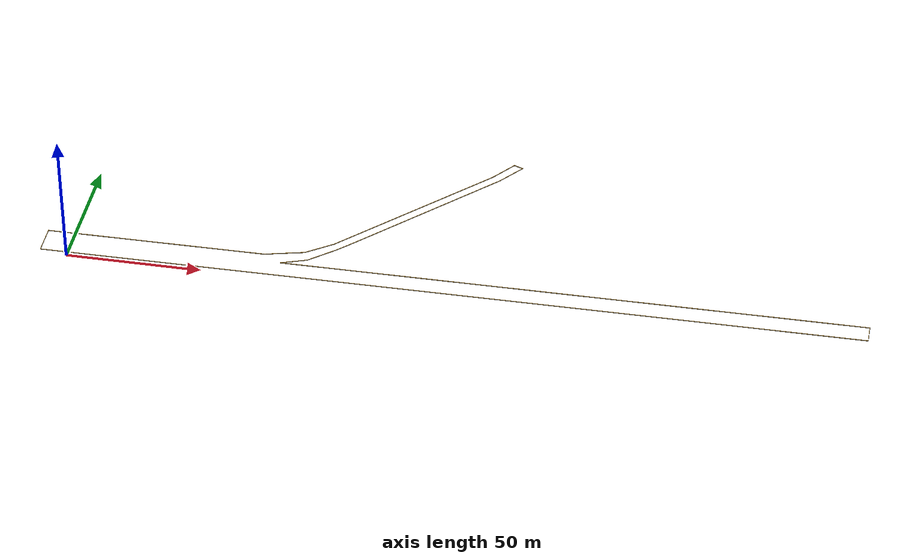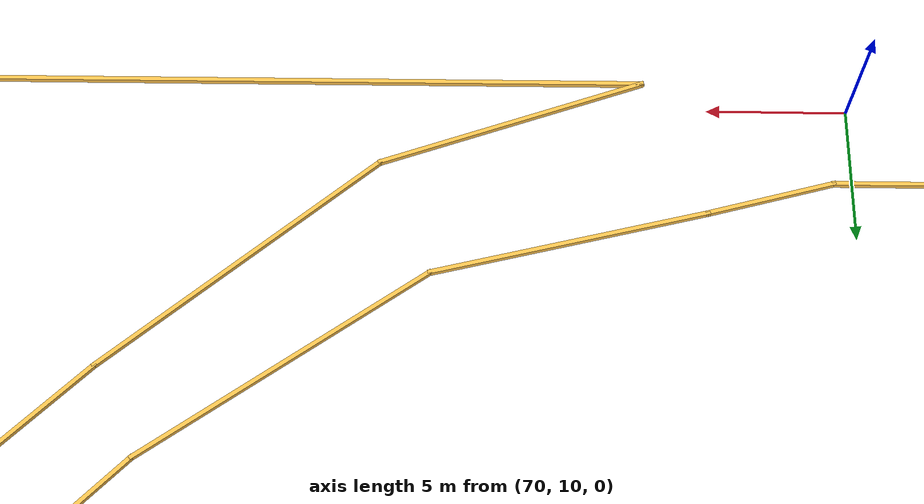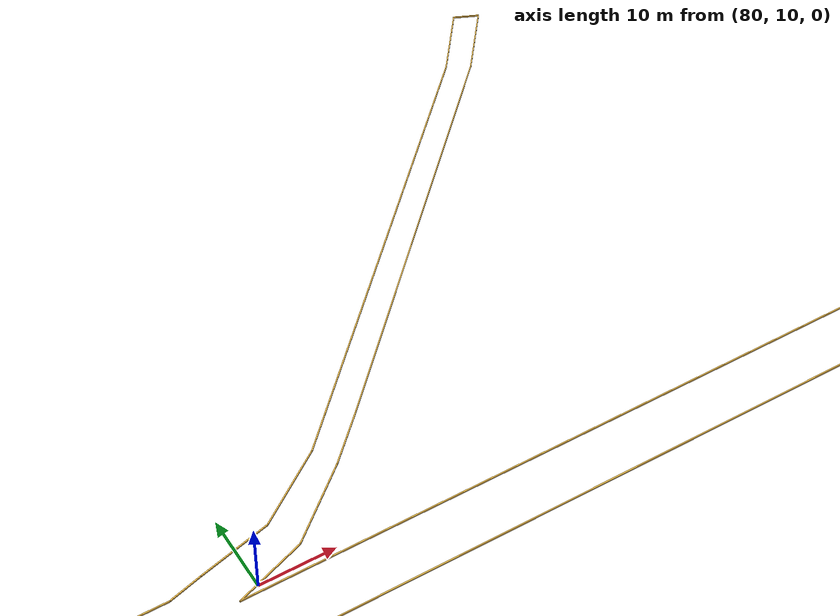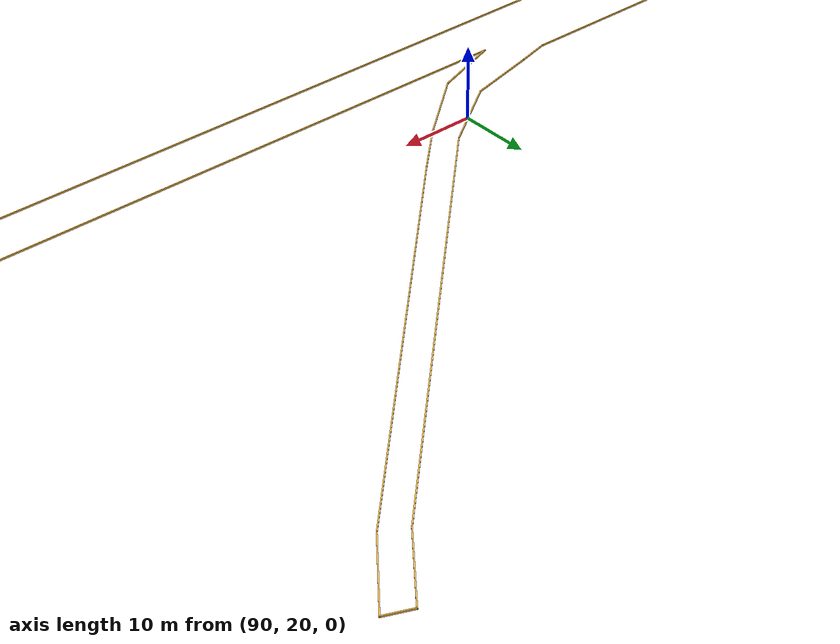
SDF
<sdf version="1.7">
 <world name="default">
  <light name="sun" type="directional">
   <pose>0 0 10 0 -0 0</pose>
   <diffuse>0.8 0.8 0.8 1</diffuse>
   <specular>0.2 0.2 0.2 1</specular>
   <attenuation>
    <range>1000</range>
    <constant>0.9</constant>
    <linear>0.01</linear>
    <quadratic>0.001</quadratic>
   </attenuation>
   <direction>-0.5 0.1 -0.9</direction>
   <spot><inner_angle>0</inner_angle><outer_angle>0</outer_angle><falloff>0</falloff></spot>
  </light>
  <gravity>0 0 -9.8</gravity>
  <magnetic_field>6e-06 2.3e-05 -4.2e-05</magnetic_field>
  <atmosphere type="adiabatic"/>
  <physics type="ode">
   <max_step_size>0.001</max_step_size>
   <real_time_factor>1</real_time_factor>
   <real_time_update_rate>1000</real_time_update_rate>
  </physics>
  <scene><ambient>0.4 0.4 0.4 1</ambient><background>0.7 0.7 0.7 1</background><shadows>1</shadows></scene>
  <spherical_coordinates>
   <surface_model>EARTH_WGS84</surface_model>
   <latitude_deg>0</latitude_deg>
   <longitude_deg>0</longitude_deg>
   <elevation>0</elevation>
   <heading_deg>0</heading_deg>
  </spherical_coordinates>
  <model name="Highway_bars">
   <pose>139.869 40.6807 0.195642 0 -0 0</pose>
   <link name="Wall_11">
    <collision name="Wall_11_Collision">
     <geometry><box><size>81 0.15 0.2</size></box></geometry>
     <pose>0 0 0.1 0 -0 0</pose>
    </collision>
    <visual name="Wall_11_Visual">
     <pose>0 0 0.1 0 -0 0</pose>
     <geometry><box><size>81 0.15 0.2</size></box></geometry>
     <material>
      <script><uri>file://media/materials/scripts/gazebo.material</uri><name>Gazebo/Grey</name></script>
      <ambient>1 0.764706 0.305882 1</ambient>
     </material>
     <meta><layer>0</layer></meta>
    </visual>
    <pose>-109.575 -27.6751 0 0 -0 0</pose>
   </link>
   <link name="Wall_13">
    <collision name="Wall_13_Collision">
     <geometry><box><size>4.75 0.15 0.2</size></box></geometry>
     <pose>0 0 0.1 0 -0 0</pose>
    </collision>
    <visual name="Wall_13_Visual">
     <pose>0 0 0.1 0 -0 0</pose>
     <geometry><box><size>4.75 0.15 0.2</size></box></geometry>
     <material>
      <script><uri>file://media/materials/scripts/gazebo.material</uri><name>Gazebo/Grey</name></script>
      <ambient>1 0.764706 0.305882 1</ambient>
     </material>
     <meta><layer>0</layer></meta>
    </visual>
    <pose>-66.9285 -27.0796 0 0 -0 0.261905</pose>
   </link>
   <link name="Wall_15">
    <collision name="Wall_15_Collision">
     <geometry><box><size>10.039 0.15 0.2</size></box></geometry>
     <pose>0 0 0.1 0 -0 0</pose>
    </collision>
    <visual name="Wall_15_Visual">
     <pose>0 0 0.1 0 -0 0</pose>
     <geometry><box><size>10.039 0.15 0.2</size></box></geometry>
     <material>
      <script><uri>file://media/materials/scripts/gazebo.material</uri><name>Gazebo/Grey</name></script>
      <ambient>1 0.764706 0.305882 1</ambient>
     </material>
     <meta><layer>0</layer></meta>
    </visual>
    <pose>-59.904 -25.3096 0 0 -0 0.239828</pose>
   </link>
   <link name="Wall_18">
    <collision name="Wall_18_Collision">
     <geometry><box><size>11.7995 0.15 0.2</size></box></geometry>
     <pose>0 0 0.1 0 -0 0</pose>
    </collision>
    <visual name="Wall_18_Visual">
     <pose>0 0 0.1 0 -0 0</pose>
     <geometry><box><size>11.7995 0.15 0.2</size></box></geometry>
     <material>
      <script><uri>file://media/materials/scripts/gazebo.material</uri><name>Gazebo/Grey</name></script>
      <ambient>1 0.764706 0.305882 1</ambient>
     </material>
     <meta><layer>0</layer></meta>
    </visual>
    <pose>-50.329 -20.7951 0 0 -0 0.61067</pose>
   </link>
   <link name="Wall_22">
    <collision name="Wall_22_Collision">
     <geometry><box><size>70.9371 0.15 0.2</size></box></geometry>
     <pose>0 0 0.1 0 -0 0</pose>
    </collision>
    <visual name="Wall_22_Visual">
     <pose>0 0 0.1 0 -0 0</pose>
     <geometry><box><size>70.9371 0.15 0.2</size></box></geometry>
     <material>
      <script><uri>file://media/materials/scripts/gazebo.material</uri><name>Gazebo/Grey</name></script>
      <ambient>1 0.764706 0.305882 1</ambient>
     </material>
     <meta><layer>0</layer></meta>
    </visual>
    <pose>-20.553 7.59492 0 0 -0 0.786317</pose>
   </link>
   <link name="Wall_24">
    <collision name="Wall_24_Collision">
     <geometry><box><size>11.2 0.15 0.2</size></box></geometry>
     <pose>0 0 0.1 0 -0 0</pose>
    </collision>
    <visual name="Wall_24_Visual">
     <pose>0 0 0.1 0 -0 0</pose>
     <geometry><box><size>11.2 0.15 0.2</size></box></geometry>
     <material>
      <script><uri>file://media/materials/scripts/gazebo.material</uri><name>Gazebo/Grey</name></script>
      <ambient>1 0.764706 0.305882 1</ambient>
     </material>
     <meta><layer>0</layer></meta>
    </visual>
    <pose>7.84149 37.0074 0 0 -0 0.910118</pose>
   </link>
   <link name="Wall_26">
    <collision name="Wall_26_Collision">
     <geometry><box><size>3.73351 0.15 0.2</size></box></geometry>
     <pose>0 0 0.1 0 -0 0</pose>
    </collision>
    <visual name="Wall_26_Visual">
     <pose>0 0 0.1 0 -0 0</pose>
     <geometry><box><size>3.73351 0.15 0.2</size></box></geometry>
     <material>
      <script><uri>file://media/materials/scripts/gazebo.material</uri><name>Gazebo/Grey</name></script>
      <ambient>1 0.764706 0.305882 1</ambient>
     </material>
     <meta><layer>0</layer></meta>
    </visual>
    <pose>12.876 40.6574 0 0 -0 -0.408959</pose>
   </link>
   <link name="Wall_29">
    <collision name="Wall_29_Collision">
     <geometry><box><size>11.5 0.15 0.2</size></box></geometry>
     <pose>0 0 0.1 0 -0 0</pose>
    </collision>
    <visual name="Wall_29_Visual">
     <pose>0 0 0.1 0 -0 0</pose>
     <geometry><box><size>11.5 0.15 0.2</size></box></geometry>
     <material>
      <script><uri>file://media/materials/scripts/gazebo.material</uri><name>Gazebo/Grey</name></script>
      <ambient>1 0.764706 0.305882 1</ambient>
     </material>
     <meta><layer>0</layer></meta>
    </visual>
    <pose>11.009 35.4864 0 0 -0 -2.23786</pose>
   </link>
   <link name="Wall_31">
    <collision name="Wall_31_Collision">
     <geometry><box><size>64.9799 0.14 0.2</size></box></geometry>
     <pose>0 0 0.1 0 -0 0</pose>
    </collision>
    <visual name="Wall_31_Visual">
     <pose>0 0 0.1 0 -0 0</pose>
     <geometry><box><size>64.9799 0.14 0.2</size></box></geometry>
     <material>
      <script><uri>file://media/materials/scripts/gazebo.material</uri><name>Gazebo/Grey</name></script>
      <ambient>1 0.764706 0.305882 1</ambient>
     </material>
     <meta><layer>0</layer></meta>
    </visual>
    <pose>-15.349 8.02642 0 0 -0 -2.35283</pose>
   </link>
   <link name="Wall_34">
    <collision name="Wall_34_Collision">
     <geometry><box><size>8.25 0.15 0.2</size></box></geometry>
     <pose>0 0 0.1 0 -0 0</pose>
    </collision>
    <visual name="Wall_34_Visual">
     <pose>0 0 0.1 0 -0 0</pose>
     <geometry><box><size>8.25 0.15 0.2</size></box></geometry>
     <material>
      <script><uri>file://media/materials/scripts/gazebo.material</uri><name>Gazebo/Grey</name></script>
      <ambient>1 0.764706 0.305882 1</ambient>
     </material>
     <meta><layer>0</layer></meta>
    </visual>
    <pose>-41.099 -17.7991 0 0 -0 -2.36999</pose>
   </link>
   <link name="Wall_36">
    <collision name="Wall_36_Collision">
     <geometry><box><size>12.2 0.15 0.2</size></box></geometry>
     <pose>0 0 0.1 0 -0 0</pose>
    </collision>
    <visual name="Wall_36_Visual">
     <pose>0 0 0.1 0 -0 0</pose>
     <geometry><box><size>12.2 0.15 0.2</size></box></geometry>
     <material>
      <script><uri>file://media/materials/scripts/gazebo.material</uri><name>Gazebo/Grey</name></script>
      <ambient>1 0.764706 0.305882 1</ambient>
     </material>
     <meta><layer>0</layer></meta>
    </visual>
    <pose>-48.6255 -24.4861 0 0 -0 -2.44557</pose>
   </link>
   <link name="Wall_38">
    <collision name="Wall_38_Collision">
     <geometry><box><size>10 0.15 0.2</size></box></geometry>
     <pose>0 0 0.1 0 -0 0</pose>
    </collision>
    <visual name="Wall_38_Visual">
     <pose>0 0 0.1 0 -0 0</pose>
     <geometry><box><size>10 0.15 0.2</size></box></geometry>
     <material>
      <script><uri>file://media/materials/scripts/gazebo.material</uri><name>Gazebo/Grey</name></script>
      <ambient>1 0.764706 0.305882 1</ambient>
     </material>
     <meta><layer>0</layer></meta>
    </visual>
    <pose>-57.8955 -29.9826 0 0 -0 -2.80353</pose>
   </link>
   <link name="Wall_44">
    <collision name="Wall_44_Collision">
     <geometry><box><size>212.692 0.15 0.2</size></box></geometry>
     <pose>0 0 0.1 0 -0 0</pose>
    </collision>
    <visual name="Wall_44_Visual">
     <pose>0 0 0.1 0 -0 0</pose>
     <geometry><box><size>212.692 0.15 0.2</size></box></geometry>
     <material>
      <script><uri>file://media/materials/scripts/gazebo.material</uri><name>Gazebo/Grey</name></script>
      <ambient>1 0.764706 0.305882 1</ambient>
     </material>
     <meta><layer>0</layer></meta>
    </visual>
    <pose>43.729 -31.6161 0 0 -0 0</pose>
   </link>
   <link name="Wall_46">
    <collision name="Wall_46_Collision">
     <geometry><box><size>7.409 0.15 0.2</size></box></geometry>
     <pose>0 0 0.1 0 -0 0</pose>
    </collision>
    <visual name="Wall_46_Visual">
     <pose>0 0 0.1 0 -0 0</pose>
     <geometry><box><size>7.409 0.15 0.2</size></box></geometry>
     <material>
      <script><uri>file://media/materials/scripts/gazebo.material</uri><name>Gazebo/Grey</name></script>
      <ambient>1 0.764706 0.305882 1</ambient>
     </material>
     <meta><layer>0</layer></meta>
    </visual>
    <pose>150 -35.2456 0 0 -0 1.5708</pose>
   </link>
   <link name="Wall_7">
    <collision name="Wall_7_Collision">
     <geometry><box><size>11.35 0.15 0.2</size></box></geometry>
     <pose>0 0 0.1 0 -0 0</pose>
    </collision>
    <visual name="Wall_7_Visual">
     <pose>0 0 0.1 0 -0 0</pose>
     <geometry><box><size>11.35 0.15 0.2</size></box></geometry>
     <material>
      <script><uri>file://media/materials/scripts/gazebo.material</uri><name>Gazebo/Grey</name></script>
      <ambient>1 0.764706 0.305882 1</ambient>
     </material>
     <meta><layer>0</layer></meta>
    </visual>
    <pose>-150 -33.2751 0 0 -0 -1.5708</pose>
   </link>
   <link name="Wall_9">
    <collision name="Wall_9_Collision">
     <geometry><box><size>300.15 0.15 0.2</size></box></geometry>
     <pose>0 0 0.1 0 -0 0</pose>
    </collision>
    <visual name="Wall_9_Visual">
     <pose>0 0 0.1 0 -0 0</pose>
     <geometry><box><size>300.15 0.15 0.2</size></box></geometry>
     <material>
      <script><uri>file://media/materials/scripts/gazebo.material</uri><name>Gazebo/Grey</name></script>
      <ambient>1 0.764706 0.305882 1</ambient>
     </material>
     <meta><layer>0</layer></meta>
    </visual>
    <pose>-6e-06 -38.8751 0 0 -0 0</pose>
   </link>
   <static>1</static>
  </model>
 </world>
</sdf>
